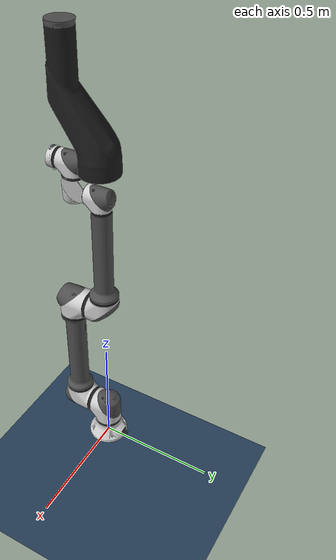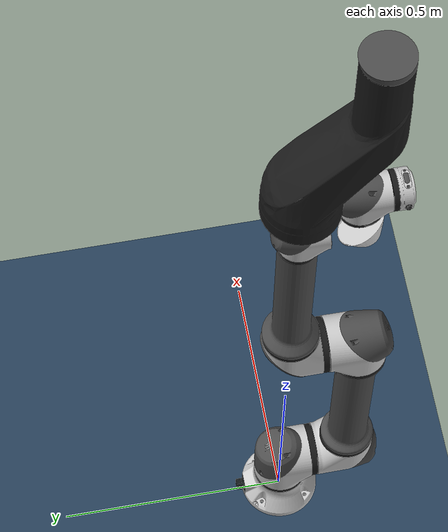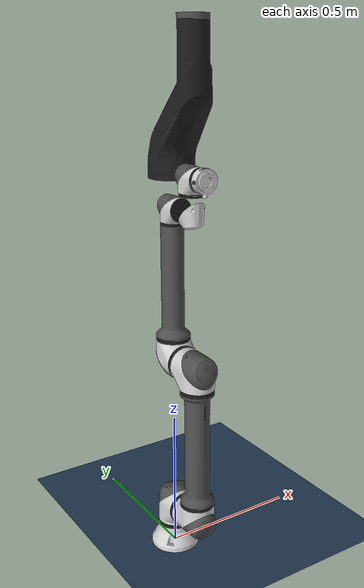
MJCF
<mujoco model="rb3_1200e_u">
  <compiler angle="radian" />
  <asset>
    <mesh name="link0" content_type="model/stl" file="../meshes/rb3_1200e_u/collision/link0.stl" />
    <mesh name="link1" content_type="model/stl" file="../meshes/rb3_1200e_u/collision/link1.stl" />
    <mesh name="link2" content_type="model/stl" file="../meshes/rb3_1200e_u/collision/link2.stl" />
    <mesh name="link3" content_type="model/stl" file="../meshes/rb3_1200e_u/collision/link3.stl" />
    <mesh name="link4" content_type="model/stl" file="../meshes/rb3_1200e_u/collision/link4.stl" />
    <mesh name="link5" content_type="model/stl" file="../meshes/rb3_1200e_u/collision/link5.stl" />
    <mesh name="link6" content_type="model/stl" file="../meshes/rb3_1200e_u/collision/link6.stl" />
    <texture type="skybox" builtin="gradient" rgb1="0.3 0.5 0.7" rgb2="0 0 0" width="512" height="3072" />
    <texture type="2d" name="groundplane" builtin="checker" mark="edge" rgb1="0.2 0.3 0.4" rgb2="0.1 0.2 0.3" markrgb="0.8 0.8 0.8" width="300" height="300" />
    <material name="groundplane" texture="groundplane" texuniform="true" texrepeat="5 5" reflectance="0.2" />
    <mesh name="link0_visual_0" file="../meshes/rb3_1200e_u/visual/link0_visual_0.obj" />
    <material name="link0_visual_0" rgba="0.8 0.8 0.8 1" specular="0" />
    <mesh name="link0_visual_1" file="../meshes/rb3_1200e_u/visual/link0_visual_1.obj" />
    <material name="link0_visual_1" rgba="0.0722719 0.0908417 0.0975874 1" specular="0" />
    <mesh name="link0_visual_2" file="../meshes/rb3_1200e_u/visual/link0_visual_2.obj" />
    <material name="link0_visual_2" rgba="0.1 0.1 0.1 1" specular="0" />
    <mesh name="link0_visual_3" file="../meshes/rb3_1200e_u/visual/link0_visual_3.obj" />
    <material name="link0_visual_3" rgba="0.8 0.8 0.8 1" specular="0" />
    <mesh name="link0_visual_4" file="../meshes/rb3_1200e_u/visual/link0_visual_4.obj" />
    <material name="link0_visual_4" rgba="0.3 0.3 0.3 1" specular="0" />
    <mesh name="link0_visual_5" file="../meshes/rb3_1200e_u/visual/link0_visual_5.obj" />
    <material name="link0_visual_5" rgba="0.8 0.8 0.8 1" specular="0" />
    <mesh name="link1_visual_0" file="../meshes/rb3_1200e_u/visual/link1_visual_0.obj" />
    <material name="link1_visual_0" rgba="0.1 0.1 0.1 1" specular="0" />
    <mesh name="link1_visual_1" file="../meshes/rb3_1200e_u/visual/link1_visual_1.obj" />
    <material name="link1_visual_1" rgba="0.1 0.1 0.1 1" specular="0" />
    <mesh name="link1_visual_2" file="../meshes/rb3_1200e_u/visual/link1_visual_2.obj" />
    <material name="link1_visual_2" rgba="0.8 0.8 0.8 1" specular="0" />
    <mesh name="link1_visual_3" file="../meshes/rb3_1200e_u/visual/link1_visual_3.obj" />
    <material name="link1_visual_3" rgba="0.3 0.3 0.3 1" specular="0" />
    <mesh name="link1_visual_4" file="../meshes/rb3_1200e_u/visual/link1_visual_4.obj" />
    <material name="link1_visual_4" rgba="0.8 0.8 0.8 1" specular="0" />
    <mesh name="link2_visual_0" file="../meshes/rb3_1200e_u/visual/link2_visual_0.obj" />
    <material name="link2_visual_0" rgba="0.3 0.3 0.3 1" specular="0" />
    <mesh name="link2_visual_1" file="../meshes/rb3_1200e_u/visual/link2_visual_1.obj" />
    <material name="link2_visual_1" rgba="0.1 0.1 0.1 1" specular="0" />
    <mesh name="link2_visual_2" file="../meshes/rb3_1200e_u/visual/link2_visual_2.obj" />
    <material name="link2_visual_2" rgba="0.1 0.1 0.1 1" specular="0" />
    <mesh name="link2_visual_3" file="../meshes/rb3_1200e_u/visual/link2_visual_3.obj" />
    <material name="link2_visual_3" rgba="0.1 0.1 0.1 1" specular="0" />
    <mesh name="link2_visual_4" file="../meshes/rb3_1200e_u/visual/link2_visual_4.obj" />
    <material name="link2_visual_4" rgba="0.1 0.1 0.1 1" specular="0" />
    <mesh name="link2_visual_5" file="../meshes/rb3_1200e_u/visual/link2_visual_5.obj" />
    <material name="link2_visual_5" rgba="0.8 0.8 0.8 1" specular="0" />
    <mesh name="link2_visual_6" file="../meshes/rb3_1200e_u/visual/link2_visual_6.obj" />
    <material name="link2_visual_6" rgba="0.3 0.3 0.3 1" specular="0" />
    <mesh name="link2_visual_7" file="../meshes/rb3_1200e_u/visual/link2_visual_7.obj" />
    <material name="link2_visual_7" rgba="0.3 0.3 0.3 1" specular="0" />
    <mesh name="link2_visual_8" file="../meshes/rb3_1200e_u/visual/link2_visual_8.obj" />
    <material name="link2_visual_8" rgba="0.8 0.8 0.8 1" specular="0" />
    <mesh name="link2_visual_9" file="../meshes/rb3_1200e_u/visual/link2_visual_9.obj" />
    <material name="link2_visual_9" rgba="0.8 0.8 0.8 1" specular="0" />
    <mesh name="link3_visual_0" file="../meshes/rb3_1200e_u/visual/link3_visual_0.obj" />
    <material name="link3_visual_0" rgba="0.1 0.1 0.1 1" specular="0" />
    <mesh name="link3_visual_1" file="../meshes/rb3_1200e_u/visual/link3_visual_1.obj" />
    <material name="link3_visual_1" rgba="0.3 0.3 0.3 1" specular="0" />
    <mesh name="link3_visual_2" file="../meshes/rb3_1200e_u/visual/link3_visual_2.obj" />
    <material name="link3_visual_2" rgba="0.1 0.1 0.1 1" specular="0" />
    <mesh name="link3_visual_3" file="../meshes/rb3_1200e_u/visual/link3_visual_3.obj" />
    <material name="link3_visual_3" rgba="0.1 0.1 0.1 1" specular="0" />
    <mesh name="link3_visual_4" file="../meshes/rb3_1200e_u/visual/link3_visual_4.obj" />
    <material name="link3_visual_4" rgba="0.3 0.3 0.3 1" specular="0" />
    <mesh name="link3_visual_5" file="../meshes/rb3_1200e_u/visual/link3_visual_5.obj" />
    <material name="link3_visual_5" rgba="0.3 0.3 0.3 1" specular="0" />
    <mesh name="link3_visual_6" file="../meshes/rb3_1200e_u/visual/link3_visual_6.obj" />
    <material name="link3_visual_6" rgba="0.8 0.8 0.8 1" specular="0" />
    <mesh name="link3_visual_7" file="../meshes/rb3_1200e_u/visual/link3_visual_7.obj" />
    <material name="link3_visual_7" rgba="0.1 0.1 0.1 1" specular="0" />
    <mesh name="link3_visual_8" file="../meshes/rb3_1200e_u/visual/link3_visual_8.obj" />
    <material name="link3_visual_8" rgba="0.8 0.8 0.8 1" specular="0" />
    <mesh name="link3_visual_9" file="../meshes/rb3_1200e_u/visual/link3_visual_9.obj" />
    <material name="link3_visual_9" rgba="0.8 0.8 0.8 1" specular="0" />
    <mesh name="link4_visual_0" file="../meshes/rb3_1200e_u/visual/link4_visual_0.obj" />
    <material name="link4_visual_0" rgba="0.3 0.3 0.3 1" specular="0" />
    <mesh name="link4_visual_1" file="../meshes/rb3_1200e_u/visual/link4_visual_1.obj" />
    <material name="link4_visual_1" rgba="0.1 0.1 0.1 1" specular="0" />
    <mesh name="link4_visual_2" file="../meshes/rb3_1200e_u/visual/link4_visual_2.obj" />
    <material name="link4_visual_2" rgba="0.8 0.8 0.8 1" specular="0" />
    <mesh name="link4_visual_3" file="../meshes/rb3_1200e_u/visual/link4_visual_3.obj" />
    <material name="link4_visual_3" rgba="0.1 0.1 0.1 1" specular="0" />
    <mesh name="link4_visual_4" file="../meshes/rb3_1200e_u/visual/link4_visual_4.obj" />
    <material name="link4_visual_4" rgba="0.8 0.8 0.8 1" specular="0" />
    <mesh name="link5_visual_0" file="../meshes/rb3_1200e_u/visual/link5_visual_0.obj" />
    <material name="link5_visual_0" rgba="0.3 0.3 0.3 1" specular="0" />
    <mesh name="link5_visual_1" file="../meshes/rb3_1200e_u/visual/link5_visual_1.obj" />
    <material name="link5_visual_1" rgba="0.1 0.1 0.1 1" specular="0" />
    <mesh name="link5_visual_2" file="../meshes/rb3_1200e_u/visual/link5_visual_2.obj" />
    <material name="link5_visual_2" rgba="0.8 0.8 0.8 1" specular="0" />
    <mesh name="link5_visual_3" file="../meshes/rb3_1200e_u/visual/link5_visual_3.obj" />
    <material name="link5_visual_3" rgba="0.1 0.1 0.1 1" specular="0" />
    <mesh name="link5_visual_4" file="../meshes/rb3_1200e_u/visual/link5_visual_4.obj" />
    <material name="link5_visual_4" rgba="0.8 0.8 0.8 1" specular="0" />
    <mesh name="link6_visual_0" file="../meshes/rb3_1200e_u/visual/link6_visual_0.obj" />
    <material name="link6_visual_0" rgba="0.1 0.1 0.1 1" specular="0" />
    <mesh name="link6_visual_1" file="../meshes/rb3_1200e_u/visual/link6_visual_1.obj" />
    <material name="link6_visual_1" rgba="0.8 0.8 0.8 1" specular="0" />
    <mesh name="link6_visual_2" file="../meshes/rb3_1200e_u/visual/link6_visual_2.obj" />
    <material name="link6_visual_2" rgba="0.3 0.3 0.3 1" specular="0" />
    <mesh name="link6_visual_3" file="../meshes/rb3_1200e_u/visual/link6_visual_3.obj" />
    <material name="link6_visual_3" rgba="0.3 0.3 0.3 1" specular="0" />
    <mesh name="link6_visual_4" file="../meshes/rb3_1200e_u/visual/link6_visual_4.obj" />
    <material name="link6_visual_4" rgba="0.8 0.8 0.8 1" specular="0" />
    <mesh name="link6_visual_5" file="../meshes/rb3_1200e_u/visual/link6_visual_5.obj" />
    <material name="link6_visual_5" rgba="0.3 0.3 0.3 1" specular="0" />
  </asset>
  <worldbody>
    <body name="link0" gravcomp="1">
      <geom type="mesh" mesh="link0" group="3" />
      <body name="link1" pos="0 0 0.1692" gravcomp="1">
        <inertial pos="5.7e-05 -0.005795 -0.034516" quat="0.676677 0.181125 -0.183239 0.689729" mass="4.147" diaginertia="0.00940157 0.00878691 0.0073332" />
        <joint name="base" pos="0 0 0" axis="0 0 1" range="-6.28318530717959 6.28318530717959" />
        <geom type="mesh" mesh="link1" group="3" />
        <body name="link2" gravcomp="1">
          <inertial pos="-3.6e-05 -0.122555 0.284513" quat="0.999998 0.00017412 5.37925e-05 -0.00203714" mass="9.923" diaginertia="0.704196 0.700668 0.0226928" />
          <joint name="shoulder" pos="0 0 0" axis="0 1 0" range="-6.28318530717959 6.28318530717959" />
          <geom type="mesh" mesh="link2" group="3" />
          <body name="link3" pos="0 0 0.5669" gravcomp="1">
            <inertial pos="1.8e-05 -0.014837 0.265923" quat="0.999971 0.00737123 -3.77987e-05 -0.00201949" mass="4.156" diaginertia="0.209511 0.209256 0.00791645" />
            <joint name="elbow" pos="0 0 0" axis="0 1 0" range="-2.87979326579064 2.87979326579064" />
            <geom type="mesh" mesh="link3" group="3" />
            <body name="link4" pos="0 0 0.5224" gravcomp="1">
              <inertial pos="5.7e-05 -0.106332 0.025881" quat="0.986693 0.162394 -0.00142514 0.00799378" mass="1.452" diaginertia="0.00162904 0.00160108 0.00118182" />
              <joint name="wrist1" pos="0 0 0" axis="0 1 0" range="-6.28318530717959 6.28318530717959" />
              <geom type="mesh" mesh="link4" group="3" />
              <body name="link5" pos="0 -0.1107 0.1107" gravcomp="1">
                <inertial pos="-2.8e-05 -0.025911 -0.004363" quat="0.812497 0.582798 -0.00662653 0.0123056" mass="1.454" diaginertia="0.00163147 0.00160354 0.00118381" />
                <joint name="wrist2" pos="0 0 0" axis="0 0 1" range="-6.28318530717959 6.28318530717959" />
                <geom type="mesh" mesh="link5" group="3" />
                <body name="link6" gravcomp="1">
                  <inertial pos="-2e-06 -0.079964 -0.000494" quat="0.706709 -0.0427371 -0.0387873 0.705146" mass="0.243" diaginertia="0.000243707 0.000147897 0.000142261" />
                  <joint name="wrist3" pos="0 0 0" axis="0 1 0" range="-6.28318530717959 6.28318530717959" />
                  <geom type="mesh" mesh="link6" group="3" />
                  <body name="tcp" pos="0 -0.0967 0" gravcomp="1" />
                  <geom type="mesh" mesh="link6_visual_0" material="link6_visual_0" group="2" contype="0" conaffinity="0" density="0" />
                  <geom type="mesh" mesh="link6_visual_1" material="link6_visual_1" group="2" contype="0" conaffinity="0" density="0" />
                  <geom type="mesh" mesh="link6_visual_2" material="link6_visual_2" group="2" contype="0" conaffinity="0" density="0" />
                  <geom type="mesh" mesh="link6_visual_3" material="link6_visual_3" group="2" contype="0" conaffinity="0" density="0" />
                  <geom type="mesh" mesh="link6_visual_4" material="link6_visual_4" group="2" contype="0" conaffinity="0" density="0" />
                  <geom type="mesh" mesh="link6_visual_5" material="link6_visual_5" group="2" contype="0" conaffinity="0" density="0" />
                </body>
                <geom type="mesh" mesh="link5_visual_0" material="link5_visual_0" group="2" contype="0" conaffinity="0" density="0" />
                <geom type="mesh" mesh="link5_visual_1" material="link5_visual_1" group="2" contype="0" conaffinity="0" density="0" />
                <geom type="mesh" mesh="link5_visual_2" material="link5_visual_2" group="2" contype="0" conaffinity="0" density="0" />
                <geom type="mesh" mesh="link5_visual_3" material="link5_visual_3" group="2" contype="0" conaffinity="0" density="0" />
                <geom type="mesh" mesh="link5_visual_4" material="link5_visual_4" group="2" contype="0" conaffinity="0" density="0" />
              </body>
              <geom type="mesh" mesh="link4_visual_0" material="link4_visual_0" group="2" contype="0" conaffinity="0" density="0" />
              <geom type="mesh" mesh="link4_visual_1" material="link4_visual_1" group="2" contype="0" conaffinity="0" density="0" />
              <geom type="mesh" mesh="link4_visual_2" material="link4_visual_2" group="2" contype="0" conaffinity="0" density="0" />
              <geom type="mesh" mesh="link4_visual_3" material="link4_visual_3" group="2" contype="0" conaffinity="0" density="0" />
              <geom type="mesh" mesh="link4_visual_4" material="link4_visual_4" group="2" contype="0" conaffinity="0" density="0" />
            </body>
            <geom type="mesh" mesh="link3_visual_0" material="link3_visual_0" group="2" contype="0" conaffinity="0" density="0" />
            <geom type="mesh" mesh="link3_visual_1" material="link3_visual_1" group="2" contype="0" conaffinity="0" density="0" />
            <geom type="mesh" mesh="link3_visual_2" material="link3_visual_2" group="2" contype="0" conaffinity="0" density="0" />
            <geom type="mesh" mesh="link3_visual_3" material="link3_visual_3" group="2" contype="0" conaffinity="0" density="0" />
            <geom type="mesh" mesh="link3_visual_4" material="link3_visual_4" group="2" contype="0" conaffinity="0" density="0" />
            <geom type="mesh" mesh="link3_visual_5" material="link3_visual_5" group="2" contype="0" conaffinity="0" density="0" />
            <geom type="mesh" mesh="link3_visual_6" material="link3_visual_6" group="2" contype="0" conaffinity="0" density="0" />
            <geom type="mesh" mesh="link3_visual_7" material="link3_visual_7" group="2" contype="0" conaffinity="0" density="0" />
            <geom type="mesh" mesh="link3_visual_8" material="link3_visual_8" group="2" contype="0" conaffinity="0" density="0" />
            <geom type="mesh" mesh="link3_visual_9" material="link3_visual_9" group="2" contype="0" conaffinity="0" density="0" />
          </body>
          <geom type="mesh" mesh="link2_visual_0" material="link2_visual_0" group="2" contype="0" conaffinity="0" density="0" />
          <geom type="mesh" mesh="link2_visual_1" material="link2_visual_1" group="2" contype="0" conaffinity="0" density="0" />
          <geom type="mesh" mesh="link2_visual_2" material="link2_visual_2" group="2" contype="0" conaffinity="0" density="0" />
          <geom type="mesh" mesh="link2_visual_3" material="link2_visual_3" group="2" contype="0" conaffinity="0" density="0" />
          <geom type="mesh" mesh="link2_visual_4" material="link2_visual_4" group="2" contype="0" conaffinity="0" density="0" />
          <geom type="mesh" mesh="link2_visual_5" material="link2_visual_5" group="2" contype="0" conaffinity="0" density="0" />
          <geom type="mesh" mesh="link2_visual_6" material="link2_visual_6" group="2" contype="0" conaffinity="0" density="0" />
          <geom type="mesh" mesh="link2_visual_7" material="link2_visual_7" group="2" contype="0" conaffinity="0" density="0" />
          <geom type="mesh" mesh="link2_visual_8" material="link2_visual_8" group="2" contype="0" conaffinity="0" density="0" />
          <geom type="mesh" mesh="link2_visual_9" material="link2_visual_9" group="2" contype="0" conaffinity="0" density="0" />
        </body>
        <geom type="mesh" mesh="link1_visual_0" material="link1_visual_0" group="2" contype="0" conaffinity="0" density="0" />
        <geom type="mesh" mesh="link1_visual_1" material="link1_visual_1" group="2" contype="0" conaffinity="0" density="0" />
        <geom type="mesh" mesh="link1_visual_2" material="link1_visual_2" group="2" contype="0" conaffinity="0" density="0" />
        <geom type="mesh" mesh="link1_visual_3" material="link1_visual_3" group="2" contype="0" conaffinity="0" density="0" />
        <geom type="mesh" mesh="link1_visual_4" material="link1_visual_4" group="2" contype="0" conaffinity="0" density="0" />
      </body>
      <geom type="mesh" mesh="link0_visual_0" material="link0_visual_0" group="2" contype="0" conaffinity="0" density="0" />
      <geom type="mesh" mesh="link0_visual_1" material="link0_visual_1" group="2" contype="0" conaffinity="0" density="0" />
      <geom type="mesh" mesh="link0_visual_2" material="link0_visual_2" group="2" contype="0" conaffinity="0" density="0" />
      <geom type="mesh" mesh="link0_visual_3" material="link0_visual_3" group="2" contype="0" conaffinity="0" density="0" />
      <geom type="mesh" mesh="link0_visual_4" material="link0_visual_4" group="2" contype="0" conaffinity="0" density="0" />
      <geom type="mesh" mesh="link0_visual_5" material="link0_visual_5" group="2" contype="0" conaffinity="0" density="0" />
    </body>
    <light pos="0 0 4" dir="0 0 -1" directional="true" />
    <geom name="floor" type="plane" size="0 0 0.05" material="groundplane" />
  </worldbody>
  <option timestep="0.00025" integrator="implicitfast" />
  <visual>
    <headlight diffuse="0.6 0.6 0.6" ambient="0.3 0.3 0.3" specular="0 0 0" />
    <rgba haze="0.15 0.25 0.35 1" />
    <global azimuth="140" elevation="-20" />
  </visual>
  <contact>
    <exclude body1="link0" body2="link1" />
  </contact>
  <statistic center="0 -0.058589201 0.70525909" extent="1.4562679" />
  <actuator>
    <position name="base" joint="base" kp="2000" dampratio="2" ctrlrange="-6.28318530717959 6.28318530717959" />
    <position name="shoulder" joint="shoulder" kp="2000" dampratio="2" ctrlrange="-6.28318530717959 6.28318530717959" />
    <position name="elbow" joint="elbow" kp="2000" dampratio="2" ctrlrange="-2.87979326579064 2.87979326579064" />
    <position name="wrist1" joint="wrist1" kp="2000" dampratio="2" ctrlrange="-6.28318530717959 6.28318530717959" />
    <position name="wrist2" joint="wrist2" kp="2000" dampratio="2" ctrlrange="-6.28318530717959 6.28318530717959" />
    <position name="wrist3" joint="wrist3" kp="2000" dampratio="2" ctrlrange="-6.28318530717959 6.28318530717959" />
  </actuator>
</mujoco>
